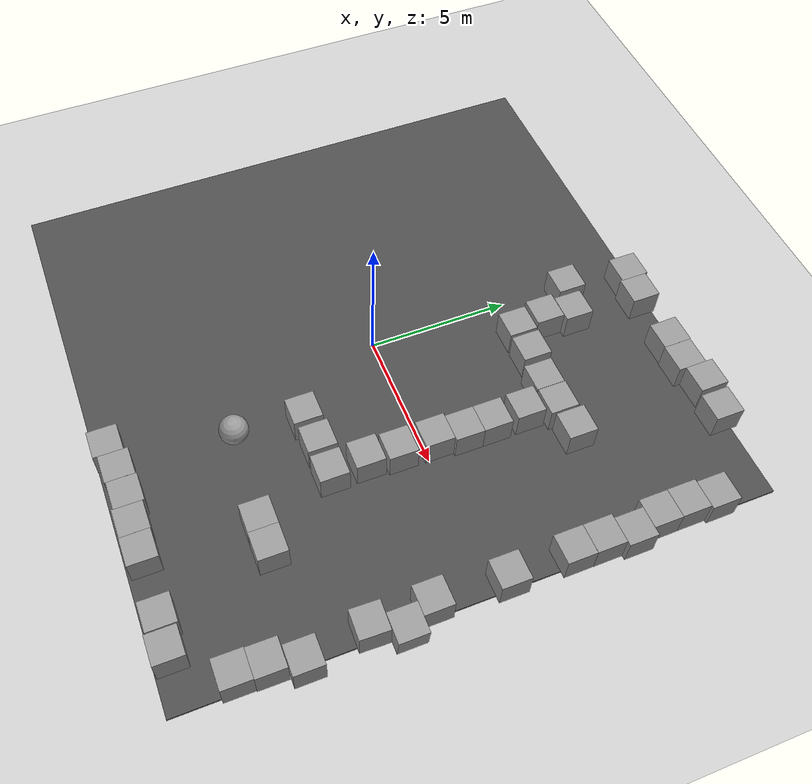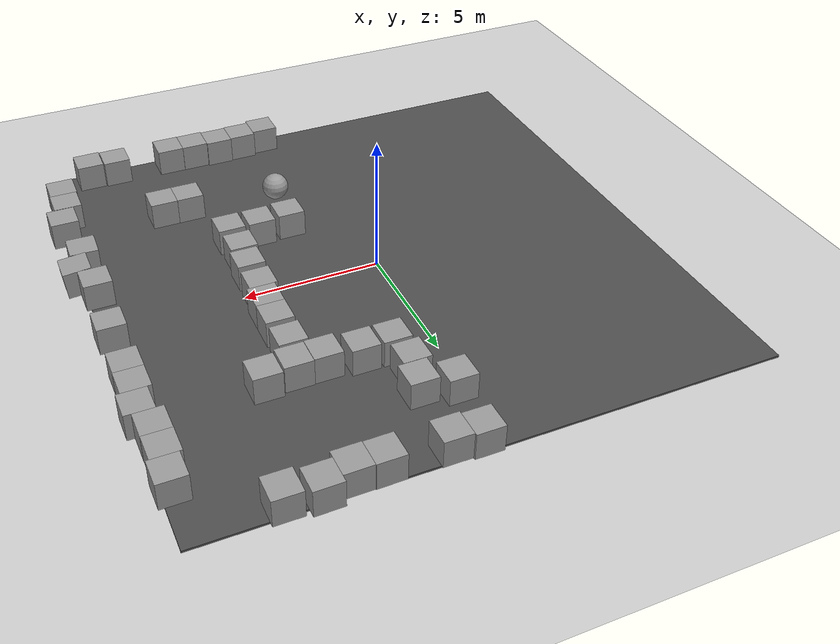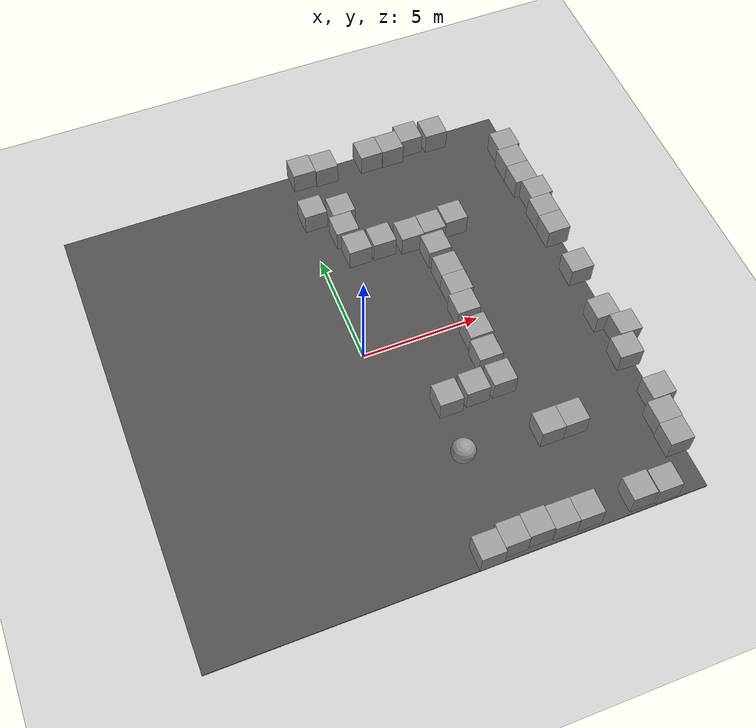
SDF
<sdf version="1.6">
 <world name="default">
  <model name="ground_plane">
   <static>1</static>
   <link name="link">
    <collision name="collision">
     <geometry><plane><normal>0 0 1</normal><size>100 100</size></plane></geometry>
     <surface><friction><ode><mu>100</mu><mu2>50</mu2></ode></friction></surface>
    </collision>
    <visual name="visual">
     <cast_shadows>0</cast_shadows>
     <geometry><plane><normal>0 0 1</normal><size>100 100</size></plane></geometry>
     <material>
      <script><uri>file://media/materials/scripts/gazebo.material</uri><name>Gazebo/Grey</name></script>
     </material>
    </visual>
   </link>
  </model>
  <model name="asphalt_plane">
   <static>1</static>
   <link name="link">
    <collision name="collision"><geometry><box><size>20 20 0.1</size></box></geometry></collision>
    <visual name="visual">
     <cast_shadows>0</cast_shadows>
     <geometry><box><size>20 20 0.1</size></box></geometry>
     <material>
      <script>
       <uri>model://asphalt_plane/materials/scripts</uri>
       <uri>model://asphalt_plane/materials/textures</uri>
       <name>vrc/asphalt</name>
      </script>
     </material>
    </visual>
   </link>
   <pose>0.023839 -0.146036 0 0 -0 0</pose>
  </model>
  <model name="unit_box_1_clone_14">
   <pose>1.09212 -9.65495 0.55 2e-06 -2e-06 0.001216</pose>
   <link name="link">
    <inertial>
     <mass>1</mass>
     <inertia>
      <ixx>0.166667</ixx>
      <ixy>0</ixy>
      <ixz>0</ixz>
      <iyy>0.166667</iyy>
      <iyz>0</iyz>
      <izz>0.166667</izz>
     </inertia>
    </inertial>
    <collision name="collision"><geometry><box><size>1 1 1</size></box></geometry></collision>
    <visual name="visual">
     <geometry><box><size>1 1 1</size></box></geometry>
     <material>
      <script><name>Gazebo/Grey</name><uri>file://media/materials/scripts/gazebo.material</uri></script>
     </material>
    </visual>
   </link>
  </model>
  <model name="unit_box_1_clone_15">
   <pose>2.09214 -9.51203 0.550002 -4e-06 -0 0.000908</pose>
   <link name="link">
    <inertial>
     <mass>1</mass>
     <inertia>
      <ixx>0.166667</ixx>
      <ixy>0</ixy>
      <ixz>0</ixz>
      <iyy>0.166667</iyy>
      <iyz>0</iyz>
      <izz>0.166667</izz>
     </inertia>
    </inertial>
    <collision name="collision"><geometry><box><size>1 1 1</size></box></geometry></collision>
    <visual name="visual">
     <geometry><box><size>1 1 1</size></box></geometry>
     <material>
      <script><name>Gazebo/Grey</name><uri>file://media/materials/scripts/gazebo.material</uri></script>
     </material>
    </visual>
   </link>
  </model>
  <model name="unit_box_1_clone_16">
   <pose>3.09308 -9.47288 0.550002 -4e-06 -0 -0.000419</pose>
   <link name="link">
    <inertial>
     <mass>1</mass>
     <inertia>
      <ixx>0.166667</ixx>
      <ixy>0</ixy>
      <ixz>0</ixz>
      <iyy>0.166667</iyy>
      <iyz>0</iyz>
      <izz>0.166667</izz>
     </inertia>
    </inertial>
    <collision name="collision"><geometry><box><size>1 1 1</size></box></geometry></collision>
    <visual name="visual">
     <geometry><box><size>1 1 1</size></box></geometry>
     <material>
      <script><name>Gazebo/Grey</name><uri>file://media/materials/scripts/gazebo.material</uri></script>
     </material>
    </visual>
   </link>
  </model>
  <model name="unit_box_1_clone_17">
   <pose>4.09329 -9.53319 0.550002 -4e-06 -0 -0.000788</pose>
   <link name="link">
    <inertial>
     <mass>1</mass>
     <inertia>
      <ixx>0.166667</ixx>
      <ixy>0</ixy>
      <ixz>0</ixz>
      <iyy>0.166667</iyy>
      <iyz>0</iyz>
      <izz>0.166667</izz>
     </inertia>
    </inertial>
    <collision name="collision"><geometry><box><size>1 1 1</size></box></geometry></collision>
    <visual name="visual">
     <geometry><box><size>1 1 1</size></box></geometry>
     <material>
      <script><name>Gazebo/Grey</name><uri>file://media/materials/scripts/gazebo.material</uri></script>
     </material>
    </visual>
   </link>
  </model>
  <model name="unit_box_1_clone_18">
   <pose>5.09334 -9.54517 0.550002 -4e-06 -0 -0.000896</pose>
   <link name="link">
    <inertial>
     <mass>1</mass>
     <inertia>
      <ixx>0.166667</ixx>
      <ixy>0</ixy>
      <ixz>0</ixz>
      <iyy>0.166667</iyy>
      <iyz>0</iyz>
      <izz>0.166667</izz>
     </inertia>
    </inertial>
    <collision name="collision"><geometry><box><size>1 1 1</size></box></geometry></collision>
    <visual name="visual">
     <geometry><box><size>1 1 1</size></box></geometry>
     <material>
      <script><name>Gazebo/Grey</name><uri>file://media/materials/scripts/gazebo.material</uri></script>
     </material>
    </visual>
   </link>
  </model>
  <model name="unit_box_1_clone_19">
   <pose>7.27245 -9.54382 0.550002 -4e-06 0 4.1e-05</pose>
   <link name="link">
    <inertial>
     <mass>1</mass>
     <inertia>
      <ixx>0.166667</ixx>
      <ixy>0</ixy>
      <ixz>0</ixz>
      <iyy>0.166667</iyy>
      <iyz>0</iyz>
      <izz>0.166667</izz>
     </inertia>
    </inertial>
    <collision name="collision"><geometry><box><size>1 1 1</size></box></geometry></collision>
    <visual name="visual">
     <geometry><box><size>1 1 1</size></box></geometry>
     <material>
      <script><name>Gazebo/Grey</name><uri>file://media/materials/scripts/gazebo.material</uri></script>
     </material>
    </visual>
   </link>
  </model>
  <model name="unit_box_1_clone_20">
   <pose>8.30476 -9.59827 0.550002 -4e-06 0 4.1e-05</pose>
   <link name="link">
    <inertial>
     <mass>1</mass>
     <inertia>
      <ixx>0.166667</ixx>
      <ixy>0</ixy>
      <ixz>0</ixz>
      <iyy>0.166667</iyy>
      <iyz>0</iyz>
      <izz>0.166667</izz>
     </inertia>
    </inertial>
    <collision name="collision"><geometry><box><size>1 1 1</size></box></geometry></collision>
    <visual name="visual">
     <geometry><box><size>1 1 1</size></box></geometry>
     <material>
      <script><name>Gazebo/Grey</name><uri>file://media/materials/scripts/gazebo.material</uri></script>
     </material>
    </visual>
   </link>
  </model>
  <model name="unit_box_1_clone_21">
   <pose>9.65905 -8.02133 0.55 0 1e-06 -0.003991</pose>
   <link name="link">
    <inertial>
     <mass>1</mass>
     <inertia>
      <ixx>0.166667</ixx>
      <ixy>0</ixy>
      <ixz>0</ixz>
      <iyy>0.166667</iyy>
      <iyz>0</iyz>
      <izz>0.166667</izz>
     </inertia>
    </inertial>
    <collision name="collision"><geometry><box><size>1 1 1</size></box></geometry></collision>
    <visual name="visual">
     <geometry><box><size>1 1 1</size></box></geometry>
     <material>
      <script><name>Gazebo/Grey</name><uri>file://media/materials/scripts/gazebo.material</uri></script>
     </material>
    </visual>
   </link>
  </model>
  <model name="unit_box_1_clone_22">
   <pose>9.69099 -7.02145 0.55 0 0 -0.003991</pose>
   <link name="link">
    <inertial>
     <mass>1</mass>
     <inertia>
      <ixx>0.166667</ixx>
      <ixy>0</ixy>
      <ixz>0</ixz>
      <iyy>0.166667</iyy>
      <iyz>0</iyz>
      <izz>0.166667</izz>
     </inertia>
    </inertial>
    <collision name="collision"><geometry><box><size>1 1 1</size></box></geometry></collision>
    <visual name="visual">
     <geometry><box><size>1 1 1</size></box></geometry>
     <material>
      <script><name>Gazebo/Grey</name><uri>file://media/materials/scripts/gazebo.material</uri></script>
     </material>
    </visual>
   </link>
  </model>
  <model name="unit_box_1_clone_23">
   <pose>10 -6 0.549999 2e-06 -0 -1e-05</pose>
   <link name="link">
    <inertial>
     <mass>1</mass>
     <inertia>
      <ixx>0.166667</ixx>
      <ixy>0</ixy>
      <ixz>0</ixz>
      <iyy>0.166667</iyy>
      <iyz>0</iyz>
      <izz>0.166667</izz>
     </inertia>
    </inertial>
    <collision name="collision"><geometry><box><size>1 1 1</size></box></geometry></collision>
    <visual name="visual">
     <geometry><box><size>1 1 1</size></box></geometry>
     <material>
      <script><name>Gazebo/Grey</name><uri>file://media/materials/scripts/gazebo.material</uri></script>
     </material>
    </visual>
   </link>
  </model>
  <model name="unit_box_1_clone_24">
   <pose>9.71579 -3.89854 0.549998 1e-06 -3e-06 -0.031801</pose>
   <link name="link">
    <inertial>
     <mass>1</mass>
     <inertia>
      <ixx>0.166667</ixx>
      <ixy>0</ixy>
      <ixz>0</ixz>
      <iyy>0.166667</iyy>
      <iyz>0</iyz>
      <izz>0.166667</izz>
     </inertia>
    </inertial>
    <collision name="collision"><geometry><box><size>1 1 1</size></box></geometry></collision>
    <visual name="visual">
     <geometry><box><size>1 1 1</size></box></geometry>
     <material>
      <script><name>Gazebo/Grey</name><uri>file://media/materials/scripts/gazebo.material</uri></script>
     </material>
    </visual>
   </link>
  </model>
  <model name="unit_box_1_clone_25">
   <pose>10.1488 -2.8939 0.541098 0.000129 0.085856 0.001557</pose>
   <link name="link">
    <inertial>
     <mass>1</mass>
     <inertia>
      <ixx>0.166667</ixx>
      <ixy>0</ixy>
      <ixz>0</ixz>
      <iyy>0.166667</iyy>
      <iyz>0</iyz>
      <izz>0.166667</izz>
     </inertia>
    </inertial>
    <collision name="collision"><geometry><box><size>1 1 1</size></box></geometry></collision>
    <visual name="visual">
     <geometry><box><size>1 1 1</size></box></geometry>
     <material>
      <script><name>Gazebo/Grey</name><uri>file://media/materials/scripts/gazebo.material</uri></script>
     </material>
    </visual>
   </link>
  </model>
  <model name="unit_box_1_clone_26">
   <pose>9.68433 -1.89456 0.55 0 -0 0.001555</pose>
   <link name="link">
    <inertial>
     <mass>1</mass>
     <inertia>
      <ixx>0.166667</ixx>
      <ixy>0</ixy>
      <ixz>0</ixz>
      <iyy>0.166667</iyy>
      <iyz>0</iyz>
      <izz>0.166667</izz>
     </inertia>
    </inertial>
    <collision name="collision"><geometry><box><size>1 1 1</size></box></geometry></collision>
    <visual name="visual">
     <geometry><box><size>1 1 1</size></box></geometry>
     <material>
      <script><name>Gazebo/Grey</name><uri>file://media/materials/scripts/gazebo.material</uri></script>
     </material>
    </visual>
   </link>
  </model>
  <model name="unit_box_1_clone_27">
   <pose>9.76855 0.548216 0.549998 2e-06 -4e-06 2.3e-05</pose>
   <link name="link">
    <inertial>
     <mass>1</mass>
     <inertia>
      <ixx>0.166667</ixx>
      <ixy>0</ixy>
      <ixz>0</ixz>
      <iyy>0.166667</iyy>
      <iyz>0</iyz>
      <izz>0.166667</izz>
     </inertia>
    </inertial>
    <collision name="collision"><geometry><box><size>1 1 1</size></box></geometry></collision>
    <visual name="visual">
     <geometry><box><size>1 1 1</size></box></geometry>
     <material>
      <script><name>Gazebo/Grey</name><uri>file://media/materials/scripts/gazebo.material</uri></script>
     </material>
    </visual>
   </link>
  </model>
  <model name="unit_box_1_clone_28">
   <pose>9.74808 2.72071 0.55 0 -0 0.004036</pose>
   <link name="link">
    <inertial>
     <mass>1</mass>
     <inertia>
      <ixx>0.166667</ixx>
      <ixy>0</ixy>
      <ixz>0</ixz>
      <iyy>0.166667</iyy>
      <iyz>0</iyz>
      <izz>0.166667</izz>
     </inertia>
    </inertial>
    <collision name="collision"><geometry><box><size>1 1 1</size></box></geometry></collision>
    <visual name="visual">
     <geometry><box><size>1 1 1</size></box></geometry>
     <material>
      <script><name>Gazebo/Grey</name><uri>file://media/materials/scripts/gazebo.material</uri></script>
     </material>
    </visual>
   </link>
  </model>
  <model name="unit_box_1_clone_29">
   <pose>9.74828 3.72075 0.550001 -0 4e-06 0.004054</pose>
   <link name="link">
    <inertial>
     <mass>1</mass>
     <inertia>
      <ixx>0.166667</ixx>
      <ixy>0</ixy>
      <ixz>0</ixz>
      <iyy>0.166667</iyy>
      <iyz>0</iyz>
      <izz>0.166667</izz>
     </inertia>
    </inertial>
    <collision name="collision"><geometry><box><size>1 1 1</size></box></geometry></collision>
    <visual name="visual">
     <geometry><box><size>1 1 1</size></box></geometry>
     <material>
      <script><name>Gazebo/Grey</name><uri>file://media/materials/scripts/gazebo.material</uri></script>
     </material>
    </visual>
   </link>
  </model>
  <model name="unit_box_1_clone_30">
   <pose>9.88777 4.72137 0.55 0 -0 0.004134</pose>
   <link name="link">
    <inertial>
     <mass>1</mass>
     <inertia>
      <ixx>0.166667</ixx>
      <ixy>0</ixy>
      <ixz>0</ixz>
      <iyy>0.166667</iyy>
      <iyz>0</iyz>
      <izz>0.166667</izz>
     </inertia>
    </inertial>
    <collision name="collision"><geometry><box><size>1 1 1</size></box></geometry></collision>
    <visual name="visual">
     <geometry><box><size>1 1 1</size></box></geometry>
     <material>
      <script><name>Gazebo/Grey</name><uri>file://media/materials/scripts/gazebo.material</uri></script>
     </material>
    </visual>
   </link>
  </model>
  <model name="unit_box_1_clone_31">
   <pose>9.63356 5.72049 0.55 0 -0 0.004248</pose>
   <link name="link">
    <inertial>
     <mass>1</mass>
     <inertia>
      <ixx>0.166667</ixx>
      <ixy>0</ixy>
      <ixz>0</ixz>
      <iyy>0.166667</iyy>
      <iyz>0</iyz>
      <izz>0.166667</izz>
     </inertia>
    </inertial>
    <collision name="collision"><geometry><box><size>1 1 1</size></box></geometry></collision>
    <visual name="visual">
     <geometry><box><size>1 1 1</size></box></geometry>
     <material>
      <script><name>Gazebo/Grey</name><uri>file://media/materials/scripts/gazebo.material</uri></script>
     </material>
    </visual>
   </link>
  </model>
  <model name="unit_box_1_clone_32">
   <pose>9.62462 6.72046 0.55 0 -0 0.004249</pose>
   <link name="link">
    <inertial>
     <mass>1</mass>
     <inertia>
      <ixx>0.166667</ixx>
      <ixy>0</ixy>
      <ixz>0</ixz>
      <iyy>0.166667</iyy>
      <iyz>0</iyz>
      <izz>0.166667</izz>
     </inertia>
    </inertial>
    <collision name="collision"><geometry><box><size>1 1 1</size></box></geometry></collision>
    <visual name="visual">
     <geometry><box><size>1 1 1</size></box></geometry>
     <material>
      <script><name>Gazebo/Grey</name><uri>file://media/materials/scripts/gazebo.material</uri></script>
     </material>
    </visual>
   </link>
  </model>
  <model name="unit_box_1_clone_33">
   <pose>9.7178 7.7209 0.550001 0 3e-06 0.004264</pose>
   <link name="link">
    <inertial>
     <mass>1</mass>
     <inertia>
      <ixx>0.166667</ixx>
      <ixy>0</ixy>
      <ixz>0</ixz>
      <iyy>0.166667</iyy>
      <iyz>0</iyz>
      <izz>0.166667</izz>
     </inertia>
    </inertial>
    <collision name="collision"><geometry><box><size>1 1 1</size></box></geometry></collision>
    <visual name="visual">
     <geometry><box><size>1 1 1</size></box></geometry>
     <material>
      <script><name>Gazebo/Grey</name><uri>file://media/materials/scripts/gazebo.material</uri></script>
     </material>
    </visual>
   </link>
  </model>
  <model name="unit_box_1_clone_34">
   <pose>6.9999 9.55278 0.549999 0 3e-06 0.000396</pose>
   <link name="link">
    <inertial>
     <mass>1</mass>
     <inertia>
      <ixx>0.166667</ixx>
      <ixy>0</ixy>
      <ixz>0</ixz>
      <iyy>0.166667</iyy>
      <iyz>0</iyz>
      <izz>0.166667</izz>
     </inertia>
    </inertial>
    <collision name="collision"><geometry><box><size>1 1 1</size></box></geometry></collision>
    <visual name="visual">
     <geometry><box><size>1 1 1</size></box></geometry>
     <material>
      <script><name>Gazebo/Grey</name><uri>file://media/materials/scripts/gazebo.material</uri></script>
     </material>
    </visual>
   </link>
  </model>
  <model name="unit_box_1_clone_35">
   <pose>5.84882 9.67109 0.55 0 -0 0.010935</pose>
   <link name="link">
    <inertial>
     <mass>1</mass>
     <inertia>
      <ixx>0.166667</ixx>
      <ixy>0</ixy>
      <ixz>0</ixz>
      <iyy>0.166667</iyy>
      <iyz>0</iyz>
      <izz>0.166667</izz>
     </inertia>
    </inertial>
    <collision name="collision"><geometry><box><size>1 1 1</size></box></geometry></collision>
    <visual name="visual">
     <geometry><box><size>1 1 1</size></box></geometry>
     <material>
      <script><name>Gazebo/Grey</name><uri>file://media/materials/scripts/gazebo.material</uri></script>
     </material>
    </visual>
   </link>
  </model>
  <model name="unit_box_1_clone_36">
   <pose>4.85148 9.42211 0.54998 0 -0 0.010932</pose>
   <link name="link">
    <inertial>
     <mass>1</mass>
     <inertia>
      <ixx>0.166667</ixx>
      <ixy>0</ixy>
      <ixz>0</ixz>
      <iyy>0.166667</iyy>
      <iyz>0</iyz>
      <izz>0.166667</izz>
     </inertia>
    </inertial>
    <collision name="collision"><geometry><box><size>1 1 1</size></box></geometry></collision>
    <visual name="visual">
     <geometry><box><size>1 1 1</size></box></geometry>
     <material>
      <script><name>Gazebo/Grey</name><uri>file://media/materials/scripts/gazebo.material</uri></script>
     </material>
    </visual>
   </link>
  </model>
  <model name="unit_box_1_clone_37">
   <pose>3.85126 9.43361 0.549996 -0 -9e-06 0.010896</pose>
   <link name="link">
    <inertial>
     <mass>1</mass>
     <inertia>
      <ixx>0.166667</ixx>
      <ixy>0</ixy>
      <ixz>0</ixz>
      <iyy>0.166667</iyy>
      <iyz>0</iyz>
      <izz>0.166667</izz>
     </inertia>
    </inertial>
    <collision name="collision"><geometry><box><size>1 1 1</size></box></geometry></collision>
    <visual name="visual">
     <geometry><box><size>1 1 1</size></box></geometry>
     <material>
      <script><name>Gazebo/Grey</name><uri>file://media/materials/scripts/gazebo.material</uri></script>
     </material>
    </visual>
   </link>
  </model>
  <model name="unit_box_1_clone_38">
   <pose>1.74511 9.44152 0.55 0 0 -0.00073</pose>
   <link name="link">
    <inertial>
     <mass>1</mass>
     <inertia>
      <ixx>0.166667</ixx>
      <ixy>0</ixy>
      <ixz>0</ixz>
      <iyy>0.166667</iyy>
      <iyz>0</iyz>
      <izz>0.166667</izz>
     </inertia>
    </inertial>
    <collision name="collision"><geometry><box><size>1 1 1</size></box></geometry></collision>
    <visual name="visual">
     <geometry><box><size>1 1 1</size></box></geometry>
     <material>
      <script><name>Gazebo/Grey</name><uri>file://media/materials/scripts/gazebo.material</uri></script>
     </material>
    </visual>
   </link>
  </model>
  <model name="unit_box_1_clone_39">
   <pose>0.74517 9.52577 0.549995 -5e-06 -5e-06 -0.00073</pose>
   <link name="link">
    <inertial>
     <mass>1</mass>
     <inertia>
      <ixx>0.166667</ixx>
      <ixy>0</ixy>
      <ixz>0</ixz>
      <iyy>0.166667</iyy>
      <iyz>0</iyz>
      <izz>0.166667</izz>
     </inertia>
    </inertial>
    <collision name="collision"><geometry><box><size>1 1 1</size></box></geometry></collision>
    <visual name="visual">
     <geometry><box><size>1 1 1</size></box></geometry>
     <material>
      <script><name>Gazebo/Grey</name><uri>file://media/materials/scripts/gazebo.material</uri></script>
     </material>
    </visual>
   </link>
  </model>
  <model name="unit_sphere_0">
   <pose>1.87814 -5.638 0.55 0 -0 0</pose>
   <link name="link">
    <inertial>
     <mass>1</mass>
     <inertia><ixx>0.1</ixx><ixy>0</ixy><ixz>0</ixz><iyy>0.1</iyy><iyz>0</iyz><izz>0.1</izz></inertia>
    </inertial>
    <collision name="collision"><geometry><sphere><radius>0.5</radius></sphere></geometry></collision>
    <visual name="visual">
     <geometry><sphere><radius>0.5</radius></sphere></geometry>
     <material>
      <script><name>Gazebo/Grey</name><uri>file://media/materials/scripts/gazebo.material</uri></script>
     </material>
    </visual>
   </link>
  </model>
  <model name="unit_box_1_clone_62">
   <pose>5.91438 4.77867 0.550002 -4e-06 -0 1.3e-05</pose>
   <link name="link">
    <inertial>
     <mass>1</mass>
     <inertia>
      <ixx>0.166667</ixx>
      <ixy>0</ixy>
      <ixz>0</ixz>
      <iyy>0.166667</iyy>
      <iyz>0</iyz>
      <izz>0.166667</izz>
     </inertia>
    </inertial>
    <collision name="collision"><geometry><box><size>1 1 1</size></box></geometry></collision>
    <visual name="visual">
     <geometry><box><size>1 1 1</size></box></geometry>
     <material>
      <script><name>Gazebo/Grey</name><uri>file://media/materials/scripts/gazebo.material</uri></script>
     </material>
    </visual>
   </link>
  </model>
  <model name="unit_box_1_clone_63">
   <pose>4.85315 4.64952 0.550002 -4e-06 -0 1.2e-05</pose>
   <link name="link">
    <inertial>
     <mass>1</mass>
     <inertia>
      <ixx>0.166667</ixx>
      <ixy>0</ixy>
      <ixz>0</ixz>
      <iyy>0.166667</iyy>
      <iyz>0</iyz>
      <izz>0.166667</izz>
     </inertia>
    </inertial>
    <collision name="collision"><geometry><box><size>1 1 1</size></box></geometry></collision>
    <visual name="visual">
     <geometry><box><size>1 1 1</size></box></geometry>
     <material>
      <script><name>Gazebo/Grey</name><uri>file://media/materials/scripts/gazebo.material</uri></script>
     </material>
    </visual>
   </link>
  </model>
  <model name="unit_box_1_clone_64">
   <pose>3.84507 4.62634 0.550002 -4e-06 -0 1.2e-05</pose>
   <link name="link">
    <inertial>
     <mass>1</mass>
     <inertia>
      <ixx>0.166667</ixx>
      <ixy>0</ixy>
      <ixz>0</ixz>
      <iyy>0.166667</iyy>
      <iyz>0</iyz>
      <izz>0.166667</izz>
     </inertia>
    </inertial>
    <collision name="collision"><geometry><box><size>1 1 1</size></box></geometry></collision>
    <visual name="visual">
     <geometry><box><size>1 1 1</size></box></geometry>
     <material>
      <script><name>Gazebo/Grey</name><uri>file://media/materials/scripts/gazebo.material</uri></script>
     </material>
    </visual>
   </link>
  </model>
  <model name="unit_box_1_clone_65">
   <pose>2.62504 4.7634 0.550002 -4e-06 -0 1.1e-05</pose>
   <link name="link">
    <inertial>
     <mass>1</mass>
     <inertia>
      <ixx>0.166667</ixx>
      <ixy>0</ixy>
      <ixz>0</ixz>
      <iyy>0.166667</iyy>
      <iyz>0</iyz>
      <izz>0.166667</izz>
     </inertia>
    </inertial>
    <collision name="collision"><geometry><box><size>1 1 1</size></box></geometry></collision>
    <visual name="visual">
     <geometry><box><size>1 1 1</size></box></geometry>
     <material>
      <script><name>Gazebo/Grey</name><uri>file://media/materials/scripts/gazebo.material</uri></script>
     </material>
    </visual>
   </link>
  </model>
  <model name="unit_box_1_clone_66">
   <pose>1.53692 4.76738 0.550002 -4e-06 -0 1.1e-05</pose>
   <link name="link">
    <inertial>
     <mass>1</mass>
     <inertia>
      <ixx>0.166667</ixx>
      <ixy>0</ixy>
      <ixz>0</ixz>
      <iyy>0.166667</iyy>
      <iyz>0</iyz>
      <izz>0.166667</izz>
     </inertia>
    </inertial>
    <collision name="collision"><geometry><box><size>1 1 1</size></box></geometry></collision>
    <visual name="visual">
     <geometry><box><size>1 1 1</size></box></geometry>
     <material>
      <script><name>Gazebo/Grey</name><uri>file://media/materials/scripts/gazebo.material</uri></script>
     </material>
    </visual>
   </link>
  </model>
  <model name="unit_box_1_clone_67">
   <pose>1.3808 5.88321 0.550002 -4e-06 -0 1e-05</pose>
   <link name="link">
    <inertial>
     <mass>1</mass>
     <inertia>
      <ixx>0.166667</ixx>
      <ixy>0</ixy>
      <ixz>0</ixz>
      <iyy>0.166667</iyy>
      <iyz>0</iyz>
      <izz>0.166667</izz>
     </inertia>
    </inertial>
    <collision name="collision"><geometry><box><size>1 1 1</size></box></geometry></collision>
    <visual name="visual">
     <geometry><box><size>1 1 1</size></box></geometry>
     <material>
      <script><name>Gazebo/Grey</name><uri>file://media/materials/scripts/gazebo.material</uri></script>
     </material>
    </visual>
   </link>
  </model>
  <model name="unit_box_1_clone_68">
   <pose>1.59617 6.89214 0.550002 -4e-06 -0 9e-06</pose>
   <link name="link">
    <inertial>
     <mass>1</mass>
     <inertia>
      <ixx>0.166667</ixx>
      <ixy>0</ixy>
      <ixz>0</ixz>
      <iyy>0.166667</iyy>
      <iyz>0</iyz>
      <izz>0.166667</izz>
     </inertia>
    </inertial>
    <collision name="collision"><geometry><box><size>1 1 1</size></box></geometry></collision>
    <visual name="visual">
     <geometry><box><size>1 1 1</size></box></geometry>
     <material>
      <script><name>Gazebo/Grey</name><uri>file://media/materials/scripts/gazebo.material</uri></script>
     </material>
    </visual>
   </link>
  </model>
  <model name="unit_box_1_clone_69">
   <pose>0.428756 7.21546 0.550002 -4e-06 -0 9e-06</pose>
   <link name="link">
    <inertial>
     <mass>1</mass>
     <inertia>
      <ixx>0.166667</ixx>
      <ixy>0</ixy>
      <ixz>0</ixz>
      <iyy>0.166667</iyy>
      <iyz>0</iyz>
      <izz>0.166667</izz>
     </inertia>
    </inertial>
    <collision name="collision"><geometry><box><size>1 1 1</size></box></geometry></collision>
    <visual name="visual">
     <geometry><box><size>1 1 1</size></box></geometry>
     <material>
      <script><name>Gazebo/Grey</name><uri>file://media/materials/scripts/gazebo.material</uri></script>
     </material>
    </visual>
   </link>
  </model>
  <model name="unit_box_1_clone_71">
   <pose>4.63761 3.5619 0.550002 -4e-06 0 7e-06</pose>
   <link name="link">
    <inertial>
     <mass>1</mass>
     <inertia>
      <ixx>0.166667</ixx>
      <ixy>0</ixy>
      <ixz>0</ixz>
      <iyy>0.166667</iyy>
      <iyz>0</iyz>
      <izz>0.166667</izz>
     </inertia>
    </inertial>
    <collision name="collision"><geometry><box><size>1 1 1</size></box></geometry></collision>
    <visual name="visual">
     <geometry><box><size>1 1 1</size></box></geometry>
     <material>
      <script><name>Gazebo/Grey</name><uri>file://media/materials/scripts/gazebo.material</uri></script>
     </material>
    </visual>
   </link>
  </model>
  <model name="unit_box_1_clone_72">
   <pose>4.66045 2.35907 0.550002 -4e-06 -0 -0.001512</pose>
   <link name="link">
    <inertial>
     <mass>1</mass>
     <inertia>
      <ixx>0.166667</ixx>
      <ixy>0</ixy>
      <ixz>0</ixz>
      <iyy>0.166667</iyy>
      <iyz>0</iyz>
      <izz>0.166667</izz>
     </inertia>
    </inertial>
    <collision name="collision"><geometry><box><size>1 1 1</size></box></geometry></collision>
    <visual name="visual">
     <geometry><box><size>1 1 1</size></box></geometry>
     <material>
      <script><name>Gazebo/Grey</name><uri>file://media/materials/scripts/gazebo.material</uri></script>
     </material>
    </visual>
   </link>
  </model>
  <model name="unit_box_1_clone_73">
   <pose>4.65839 1.359 0.549995 1e-05 0 -0.001619</pose>
   <link name="link">
    <inertial>
     <mass>1</mass>
     <inertia>
      <ixx>0.166667</ixx>
      <ixy>0</ixy>
      <ixz>0</ixz>
      <iyy>0.166667</iyy>
      <iyz>0</iyz>
      <izz>0.166667</izz>
     </inertia>
    </inertial>
    <collision name="collision"><geometry><box><size>1 1 1</size></box></geometry></collision>
    <visual name="visual">
     <geometry><box><size>1 1 1</size></box></geometry>
     <material>
      <script><name>Gazebo/Grey</name><uri>file://media/materials/scripts/gazebo.material</uri></script>
     </material>
    </visual>
   </link>
  </model>
  <model name="unit_box_1_clone_74">
   <pose>4.54722 0.359097 0.549995 1e-05 0 -0.001669</pose>
   <link name="link">
    <inertial>
     <mass>1</mass>
     <inertia>
      <ixx>0.166667</ixx>
      <ixy>0</ixy>
      <ixz>0</ixz>
      <iyy>0.166667</iyy>
      <iyz>0</iyz>
      <izz>0.166667</izz>
     </inertia>
    </inertial>
    <collision name="collision"><geometry><box><size>1 1 1</size></box></geometry></collision>
    <visual name="visual">
     <geometry><box><size>1 1 1</size></box></geometry>
     <material>
      <script><name>Gazebo/Grey</name><uri>file://media/materials/scripts/gazebo.material</uri></script>
     </material>
    </visual>
   </link>
  </model>
  <model name="unit_box_1_clone_75">
   <pose>4.54429 -0.895909 0.550002 -4e-06 -0 5e-06</pose>
   <link name="link">
    <inertial>
     <mass>1</mass>
     <inertia>
      <ixx>0.166667</ixx>
      <ixy>0</ixy>
      <ixz>0</ixz>
      <iyy>0.166667</iyy>
      <iyz>0</iyz>
      <izz>0.166667</izz>
     </inertia>
    </inertial>
    <collision name="collision"><geometry><box><size>1 1 1</size></box></geometry></collision>
    <visual name="visual">
     <geometry><box><size>1 1 1</size></box></geometry>
     <material>
      <script><name>Gazebo/Grey</name><uri>file://media/materials/scripts/gazebo.material</uri></script>
     </material>
    </visual>
   </link>
  </model>
  <model name="unit_box_1_clone_76">
   <pose>4.46146 -1.98335 0.549995 1e-05 -0 8e-06</pose>
   <link name="link">
    <inertial>
     <mass>1</mass>
     <inertia>
      <ixx>0.166667</ixx>
      <ixy>0</ixy>
      <ixz>0</ixz>
      <iyy>0.166667</iyy>
      <iyz>0</iyz>
      <izz>0.166667</izz>
     </inertia>
    </inertial>
    <collision name="collision"><geometry><box><size>1 1 1</size></box></geometry></collision>
    <visual name="visual">
     <geometry><box><size>1 1 1</size></box></geometry>
     <material>
      <script><name>Gazebo/Grey</name><uri>file://media/materials/scripts/gazebo.material</uri></script>
     </material>
    </visual>
   </link>
  </model>
  <model name="unit_box_1_clone_77">
   <pose>4.51068 -3.23012 0.550002 -4e-06 -0 4e-06</pose>
   <link name="link">
    <inertial>
     <mass>1</mass>
     <inertia>
      <ixx>0.166667</ixx>
      <ixy>0</ixy>
      <ixz>0</ixz>
      <iyy>0.166667</iyy>
      <iyz>0</iyz>
      <izz>0.166667</izz>
     </inertia>
    </inertial>
    <collision name="collision"><geometry><box><size>1 1 1</size></box></geometry></collision>
    <visual name="visual">
     <geometry><box><size>1 1 1</size></box></geometry>
     <material>
      <script><name>Gazebo/Grey</name><uri>file://media/materials/scripts/gazebo.material</uri></script>
     </material>
    </visual>
   </link>
  </model>
  <model name="unit_box_1_clone_78">
   <pose>3.37052 -3.22741 0.550002 -4e-06 -0 4e-06</pose>
   <link name="link">
    <inertial>
     <mass>1</mass>
     <inertia>
      <ixx>0.166667</ixx>
      <ixy>0</ixy>
      <ixz>0</ixz>
      <iyy>0.166667</iyy>
      <iyz>0</iyz>
      <izz>0.166667</izz>
     </inertia>
    </inertial>
    <collision name="collision"><geometry><box><size>1 1 1</size></box></geometry></collision>
    <visual name="visual">
     <geometry><box><size>1 1 1</size></box></geometry>
     <material>
      <script><name>Gazebo/Grey</name><uri>file://media/materials/scripts/gazebo.material</uri></script>
     </material>
    </visual>
   </link>
  </model>
  <model name="unit_box_1_clone_79">
   <pose>2.20335 -3.30434 0.549995 1e-05 -0 6e-06</pose>
   <link name="link">
    <inertial>
     <mass>1</mass>
     <inertia>
      <ixx>0.166667</ixx>
      <ixy>0</ixy>
      <ixz>0</ixz>
      <iyy>0.166667</iyy>
      <iyz>0</iyz>
      <izz>0.166667</izz>
     </inertia>
    </inertial>
    <collision name="collision"><geometry><box><size>1 1 1</size></box></geometry></collision>
    <visual name="visual">
     <geometry><box><size>1 1 1</size></box></geometry>
     <material>
      <script><name>Gazebo/Grey</name><uri>file://media/materials/scripts/gazebo.material</uri></script>
     </material>
    </visual>
   </link>
  </model>
  <model name="unit_box_1_clone_80">
   <pose>6.32774 -5.85915 0.55 0 0 -0.000119</pose>
   <link name="link">
    <inertial>
     <mass>1</mass>
     <inertia>
      <ixx>0.166667</ixx>
      <ixy>0</ixy>
      <ixz>0</ixz>
      <iyy>0.166667</iyy>
      <iyz>0</iyz>
      <izz>0.166667</izz>
     </inertia>
    </inertial>
    <collision name="collision"><geometry><box><size>1 1 1</size></box></geometry></collision>
    <visual name="visual">
     <geometry><box><size>1 1 1</size></box></geometry>
     <material>
      <script><name>Gazebo/Grey</name><uri>file://media/materials/scripts/gazebo.material</uri></script>
     </material>
    </visual>
   </link>
  </model>
  <model name="unit_box_1_clone_81">
   <pose>5.32773 -5.85717 0.55 0 0 -0.000119</pose>
   <link name="link">
    <inertial>
     <mass>1</mass>
     <inertia>
      <ixx>0.166667</ixx>
      <ixy>0</ixy>
      <ixz>0</ixz>
      <iyy>0.166667</iyy>
      <iyz>0</iyz>
      <izz>0.166667</izz>
     </inertia>
    </inertial>
    <collision name="collision"><geometry><box><size>1 1 1</size></box></geometry></collision>
    <visual name="visual">
     <geometry><box><size>1 1 1</size></box></geometry>
     <material>
      <script><name>Gazebo/Grey</name><uri>file://media/materials/scripts/gazebo.material</uri></script>
     </material>
    </visual>
   </link>
  </model>
 </world>
</sdf>
